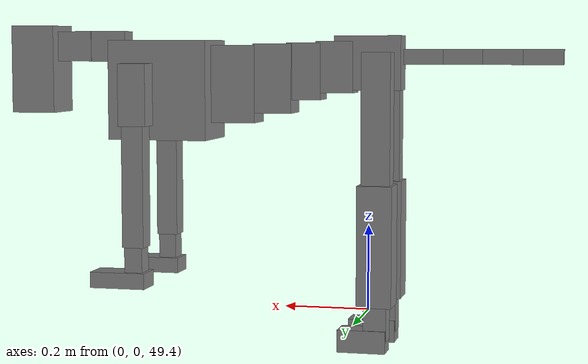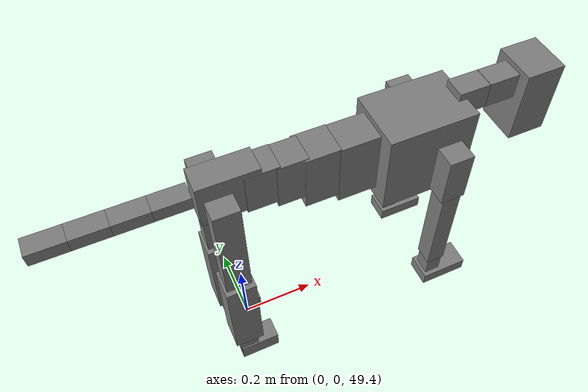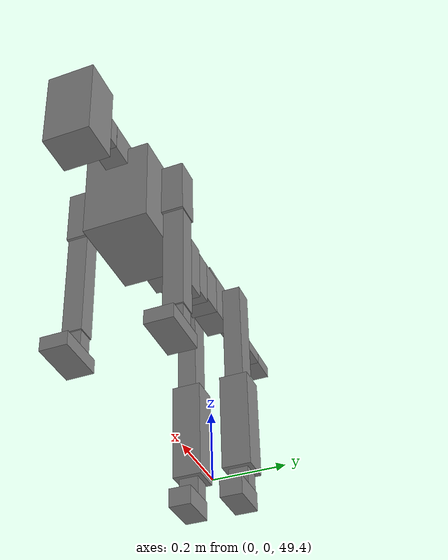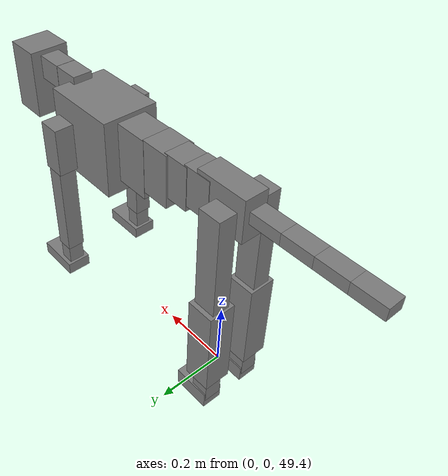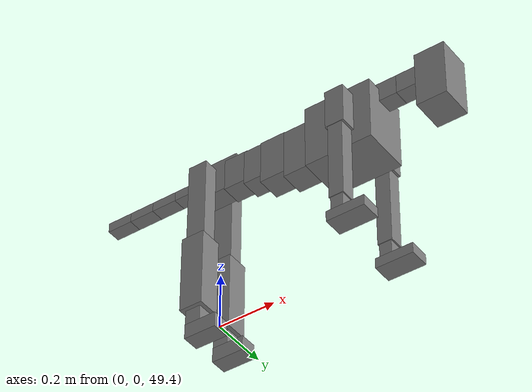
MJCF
<mujoco model="dog">

    <default>
        <joint armature="0.02" stiffness="1" damping="0.2" limited="true"/>
        <geom condim="3" friction="1 0.05 0.05" margin="0.01"/>
        <motor ctrllimited="true" ctrlrange="-1.0 1.0" forcelimited="true" gear="50"/>
    </default>

    <compiler inertiafromgeom="true" angle="radian"/>

    <option timestep="0.016" iterations="50" tolerance="1e-10" solver="Newton" jacobian="dense" cone="pyramidal"/>

    <size nconmax="20000" njmax="60000" nstack="5000000"/>
    <visual>
        <map force="0.1" zfar="30"/>
        <rgba haze="0.15 0.25 0.35 1"/>
        <quality shadowsize="2048"/>
        <global offwidth="800" offheight="800"/>
    </visual>

    <asset>
        <texture type="skybox" builtin="gradient" rgb1="0.3 0.5 0.7" rgb2="0 0 0" width="512" height="512"/>
        <texture name="texplane" type="2d" builtin="checker" rgb1=".2 .3 .4" rgb2=".1 0.15 0.2" width="512" height="512"
                 mark="cross" markrgb=".8 .8 .8"/>
        <texture name="texgeom" type="cube" builtin="flat" mark="cross" width="127" height="1278" rgb1="0.8 0.6 0.4"
                 rgb2="0.8 0.6 0.4" markrgb="1 1 1" random="0.01"/>

        <material name="matplane" reflectance="0.3" texture="texplane" texrepeat="1 1" texuniform="true"/>
        <material name="matgeom" texture="texgeom" texuniform="true" rgba="0.8 0.6 .4 1"/>
    </asset>

    <worldbody>
        <geom name="floor" pos="0 0 0" size="0 0 .25" type="plane" material="matplane" condim="3"/>

        <light directional="false" diffuse=".2 .2 .2" specular="0 0 0" pos="0 0 5" dir="0 0 -1" castshadow="false"/>
        <light mode="targetbodycom" target="torso" directional="false" diffuse=".8 .8 .8" specular="0.3 0.3 0.3"
               pos="0 0 4.0" dir="0 0 -1"/>

        <body name="root" pos="0 0 50">
            <freejoint name="root_1"/>
            <geom type="box" pos="0 0 -0.02" size="0.0774  0.0358  0.063" density="2030"/>

            <body name="spine1" pos="0.054 0 0">
                <joint name="spine1_y" axis="0 1 0" range="0 0.7" limited="true"/>
                <geom type="box" pos="0.02375 0 -0.03" size="0.04375  0.0375  0.05985" density="2030"/>

                <body name="spine2" pos="0.0612 0 0">
                    <joint name="spine2_y" axis="0 1 0" range="-0.15 0.15" limited="true"/>
                    <geom type="box" pos="0.03555  0  -0.04" size="0.04055  0.039  0.06615" density="2030"/>

                    <body name="spine3" pos="0.0730 0 0">
                        <joint name="spine3_y" axis="0 1 0" range="-0.15 0.15" limited="true"/>
                        <geom type="box" pos="0.03555  0  -0.057" size="0.04555  0.0445  0.081" density="2030"/>

                        <body name="spine4" pos="0.0780 0 0">
                            <joint name="spine4_y" axis="0 1 0" range="-0.15 0.15" limited="true"/>
                            <geom type="box" pos="0.05265  0  -0.07" size="0.05265  0.045  0.09135" density="2030"/>

                            <body name="torso" pos="0.1082 0 0">
                                <joint name="torso_y" axis="0 1 0" range="-0.15 0.15" limited="true"/>
                                <geom type="box" pos="0.11925  0  -0.085" size="0.11925  0.085  0.11745"
                                      density="2030"/>

                                <body name="neck1" pos="0.2160  0   0.0180">
                                    <joint name="neck1_y" axis="0 1 0" range="-1.2  -1" limited="true"/>
                                    <geom type="box" pos="0.0423  0  0" size="0.0423  0.03  0.036" density="2325"/>

                                    <body name="neck2" pos="0.0853  0  0">
                                        <joint name="neck2_y" axis="0 1 0" range="0.1  0" limited="true"/>
                                        <geom type="box" pos="0.0423  0  0" size="0.0423  0.03  0.036" density="2325"/>

                                        <body name="head" pos="0.0853  0  0">
                                            <joint name="head_y" axis="0 1 0" range="-0.3  -0.2" limited="true"/>
                                            <geom type="box" pos="0.0531  0  -0.055" size="0.0531  0.06  0.1044"
                                                  density="4030"/>

                                        </body>
                                    </body>
                                </body>

                                <body name="front_shoulder" pos="0.156  0   -0.0480">
                                    <joint name="front_shoulder_y" axis="0 1 0" range="-1 1.5" limited="true"/>
                                    <geom type="box" pos="0 0.13 -0.0459" size="0.0330  0.0282  0.0726" density="1158"/>
                                    <geom type="box" pos="0 -0.13 -0.0459" size="0.0330  0.0282  0.0726"
                                          density="1158"/>

                                    <body name="front_elbow" pos="0  0  -0.0918">
                                        <joint name="front_elbow_y" axis="0 1 0" range="-2 0" limited="true"/>
                                        <geom type="box" pos="0 0.13 -0.1551" size="0.0256  0.0262  0.1551"
                                              density="1081"/>
                                        <geom type="box" pos="0 -0.13 -0.1551" size="0.0256  0.0262  0.1551"
                                              density="1081"/>

                                        <body name="front_wrist" pos="0  0  -0.3102">
                                            <joint name="front_wrist_y" axis="0 1 0" range="-0.2 0" limited="true"/>
                                            <geom type="box" pos="0 0.13 -0.0366" size="0.0214  0.0238  0.0498"
                                                  density="1664"/>
                                            <geom type="box" pos="0 -0.13 -0.0366" size="0.0214  0.0238  0.0498"
                                                  density="1664"/>

                                            <body name="front_finger_end" pos="0  0  -0.0733">
                                                <joint name="front_finger_y" axis="0 1 0" range="-0.4 1"
                                                       limited="true"/>
                                                <geom type="box" pos="0.0361  0.13  -0.0037"
                                                      size="0.0661  0.0361  0.0187" density="1515"/>
                                                <geom type="box" pos="0.0361  -0.13  -0.0037"
                                                      size="0.0661  0.0361  0.0187" density="1515"/>

                                            </body>

                                        </body>
                                    </body>
                                </body>

                            </body>
                        </body>
                    </body>
                </body>
            </body>

            <body name="back_hip" pos="-0.03 0 -0.018">
                <joint name="back_hip_y" axis="0 1 0" range="-1.5 0.3" limited="true"/>
                <geom type="box" pos="0 0.07 -0.1477" size="0.0336  0.0263  0.1705" density="1154"/>
                <geom type="box" pos="0 -0.07 -0.1477" size="0.0336  0.0263  0.1705" density="1154"/>

                <body name="back_knee" pos="0  0  -0.2955">
                    <joint name="back_knee_y" axis="0 1 0" range="0 2.8" limited="true"/>
                    <geom type="box" pos="0 0.07 -0.1241" size="0.0404  0.0399  0.1397" density="1227"/>
                    <geom type="box" pos="0 -0.07 -0.1241" size="0.0404  0.0399  0.1397" density="1227"/>

                    <body name="back_ankle" pos="0  0  -0.2483">
                        <joint name="back_ankle_y" axis="0 1 0" range="-2.2 0" limited="true"/>
                        <geom type="box" pos="0 0.07 -0.0426" size="0.0267  0.0267  0.0538" density="1284"/>
                        <geom type="box" pos="0 -0.07 -0.0426" size="0.0267  0.0267  0.0538" density="1284"/>

                        <body name="back_toe_end" pos="0  0  -0.0852">
                            <joint name="back_toe_y" axis="0 1 0" range="-0.4 1" limited="true"/>
                            <geom type="box" pos="0.0304  0.07  -0.0112" size="0.0557  0.0304  0.0262" density="1515"/>
                            <geom type="box" pos="0.0304  -0.07  -0.0112" size="0.0557  0.0304  0.0262" density="1515"/>

                        </body>
                    </body>
                </body>
            </body>

            <body name="tail1" pos="-0.074 0 -0.006">
                <joint name="tail1_y" axis="0 1 0" range="-0.2 0.2" limited="true"/>
                <geom type="box" pos="-0.0536  0  0" size="0.045  0.025  0.0175" density="1587"/>

                <body name="tail2" pos="-0.09 0 0">
                    <joint name="tail2_y" axis="0 1 0" range="-0.2 0.2" limited="true"/>
                    <geom type="box" pos="-0.0536  0  0" size="0.045  0.025  0.0175" density="1587"/>

                    <body name="tail3" pos="-0.09 0 0">
                        <joint name="tail3_y" axis="0 1 0" range="-0.2 0.2" limited="true"/>
                        <geom type="box" pos="-0.0536  0  0" size="0.045  0.025  0.0175" density="1587"/>

                        <body name="tail4" pos="-0.09 0 0">
                            <joint name="tail4_y" axis="0 1 0" range="-0.2 0.2" limited="true"/>
                            <geom type="box" pos="-0.0536  0  0" size="0.045  0.025  0.0175" density="1587"/>

                        </body>
                    </body>
                </body>
            </body>
        </body>
    </worldbody>

    <actuator>
        <motor joint="spine1_y" forcerange="-150 150     "/>
        <motor joint="spine2_y" forcerange="-150 150     "/>
        <motor joint="spine3_y" forcerange="-150 150     "/>
        <motor joint="spine4_y" forcerange="-150 150     "/>
        <motor joint="torso_y" forcerange="-150 150     "/>
        <motor joint="neck1_y" forcerange="-100 100       "/>
        <motor joint="neck2_y" forcerange="-100 100       "/>
        <motor joint="head_y" forcerange="-150 150       "/>
        <motor joint="front_shoulder_y" forcerange="-159.94 128.15"/>
        <motor joint="front_elbow_y" forcerange="-106.97 183.49"/>
        <motor joint="front_wrist_y" forcerange="-76.91 113.46"/>
        <motor joint="front_finger_y" forcerange="-74.38 77.94"/>
        <motor joint="back_hip_y" forcerange="-242.44 308.67"/>
        <motor joint="back_knee_y" forcerange="-392.08 387.81"/>
        <motor joint="back_angle_y" forcerange="-90.34 236.47"/>
        <motor joint="back_toe_y" forcerange="-87.49 75.39"/>
        <motor joint="tail1_y" forcerange="-50 50     "/>
        <motor joint="tail2_y" forcerange="-50 50     "/>
        <motor joint="tail3_y" forcerange="-50 50     "/>
        <motor joint="tail4_y" forcerange="-50 50     "/>
    </actuator>
</mujoco>
